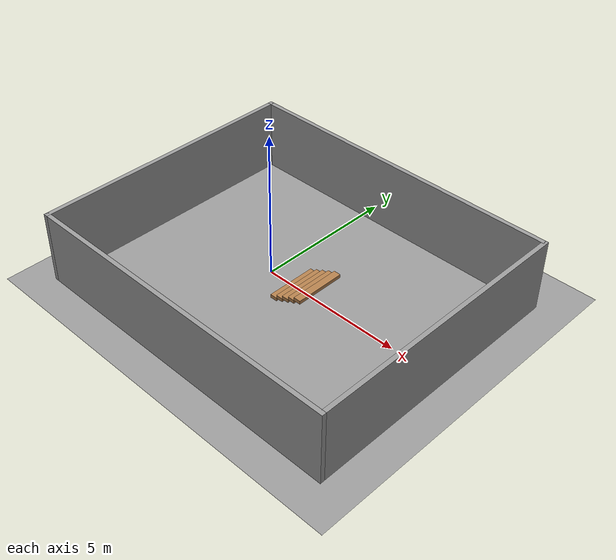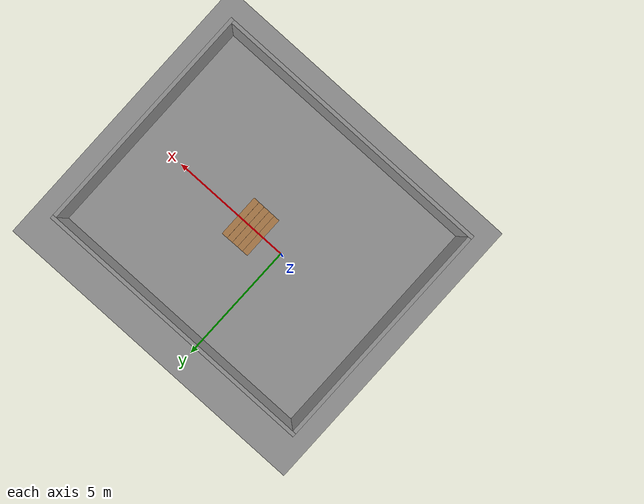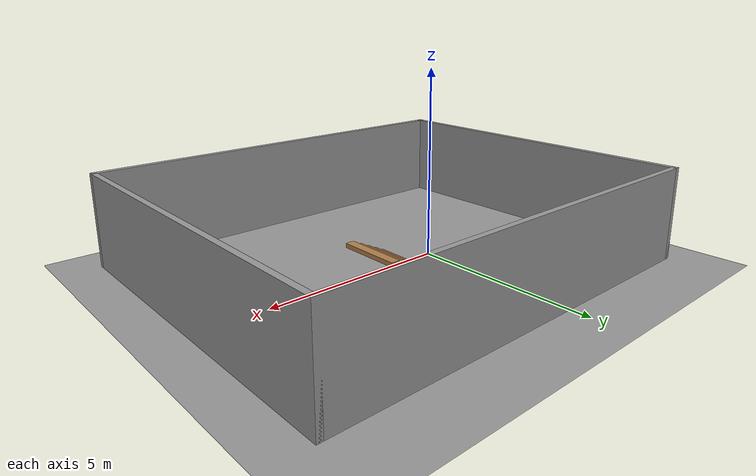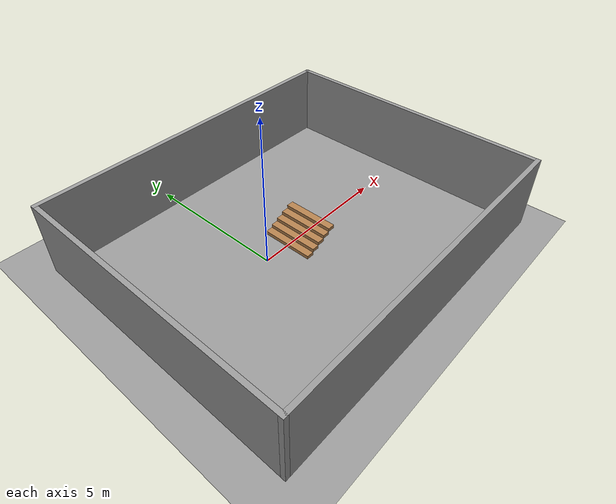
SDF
<?xml version="1.0" ?>
<sdf version="1.5">
    <world name="default">

        <physics type="ode">
        <max_step_size>0.001</max_step_size>
        <real_time_factor>1</real_time_factor>
        <real_time_update_rate>1000</real_time_update_rate>
        <gravity>0 0 -9.81</gravity>
            <ode>
                <solver>
                <type>quick</type>
                <iters>50</iters>
                <sor>1.3</sor>
                </solver>
                <constraints>
                <cfm>0.0</cfm>
                <erp>0.2</erp>
                <contact_max_correcting_vel>10.0</contact_max_correcting_vel>
                <contact_surface_layer>0.001</contact_surface_layer>
                </constraints>
            </ode>
        </physics>

        <scene>
        <shadows>false</shadows>
        </scene>
        <!-- A global light source -->
        <include>
            <uri>model://sun</uri>
        </include>
        <include>
            <uri>model://stairs</uri>
        </include>
        <!-- environment blocks, obstacles or stairs -->

    </world>
</sdf>

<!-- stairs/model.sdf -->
<sdf version='1.7'>
  <model name='stairs'>
    <pose>1.17958 -0.275631 0 0 -0 0</pose>
    <link name='Stairs_2'>
      <visual name='Stairs_2_Visual_0'>
        <pose>-0.179578 0.275631 0.06 0 -0 1.5708</pose>
        <geometry>
          <box>
            <size>1.77 0.25 0.12</size>
          </box>
        </geometry>
        <material>
          <script>
            <uri>file://media/materials/scripts/gazebo.material</uri>
            <name>Gazebo/Wood</name>
          </script>
          <ambient>0.921569 0.807843 0.615686 1</ambient>
        </material>
        <meta>
          <layer>0</layer>
        </meta>
      </visual>
      <collision name='Stairs_2_Collision_0'>
      <laser_retro>120</laser_retro>
        <geometry>
          <box>
            <size>1.77 0.25 0.12</size>
          </box>
        </geometry>
        <pose>-0.179578 0.275631 0.06 0 -0 1.5708</pose>
      </collision>
      <visual name='Stairs_2_Visual_1'>
        <pose>0.070422 0.275631 0.18 0 -0 1.5708</pose>
        <geometry>
          <box>
            <size>1.77 0.25 0.12</size>
          </box>
        </geometry>
        <material>
          <script>
            <uri>file://media/materials/scripts/gazebo.material</uri>
            <name>Gazebo/Wood</name>
          </script>
          <ambient>0.921569 0.807843 0.615686 1</ambient>
        </material>
        <meta>
          <layer>0</layer>
        </meta>
      </visual>
      <collision name='Stairs_2_Collision_1'>
      <laser_retro>120</laser_retro>
        <geometry>
          <box>
            <size>1.77 0.25 0.12</size>
          </box>
        </geometry>
        <pose>0.070422 0.275631 0.18 0 -0 1.5708</pose>
      </collision>
      <visual name='Stairs_2_Visual_2'>
        <pose>0.320422 0.275631 0.3 0 -0 1.5708</pose>
        <geometry>
          <box>
            <size>1.77 0.25 0.12</size>
          </box>
        </geometry>
        <material>
          <script>
            <uri>file://media/materials/scripts/gazebo.material</uri>
            <name>Gazebo/Wood</name>
          </script>
          <ambient>0.921569 0.807843 0.615686 1</ambient>
        </material>
        <meta>
          <layer>0</layer>
        </meta>
      </visual>
      <collision name='Stairs_2_Collision_2'>
      <laser_retro>120</laser_retro>
        <geometry>
          <box>
            <size>1.77 0.25 0.12</size>
          </box>
        </geometry>
        <pose>0.320422 0.275631 0.3 0 -0 1.5708</pose>
      </collision>
      <visual name='Stairs_2_Visual_3'>
        <pose>0.570422 0.275631 0.42 0 -0 1.5708</pose>
        <geometry>
          <box>
            <size>1.77 0.25 0.12</size>
          </box>
        </geometry>
        <material>
          <script>
            <uri>file://media/materials/scripts/gazebo.material</uri>
            <name>Gazebo/Wood</name>
          </script>
          <ambient>0.921569 0.807843 0.615686 1</ambient>
        </material>
        <meta>
          <layer>0</layer>
        </meta>
      </visual>
      <collision name='Stairs_2_Collision_3'>
      <laser_retro>120</laser_retro>
        <geometry>
          <box>
            <size>1.77 0.25 0.12</size>
          </box>
        </geometry>
        <pose>0.570422 0.275631 0.42 0 -0 1.5708</pose>
      </collision>
      <visual name='Stairs_2_Visual_4'>
        <pose>0.820422 0.275631 0.54 0 -0 1.5708</pose>
        <geometry>
          <box>
            <size>1.77 0.25 0.12</size>
          </box>
        </geometry>
        <material>
          <script>
            <uri>file://media/materials/scripts/gazebo.material</uri>
            <name>Gazebo/Wood</name>
          </script>
          <ambient>0.921569 0.807843 0.615686 1</ambient>
        </material>
        <meta>
          <layer>0</layer>
        </meta>
      </visual>
      <collision name='Stairs_2_Collision_4'>
      <laser_retro>120</laser_retro>
        <geometry>
          <box>
            <size>1.77 0.25 0.12</size>
          </box>
        </geometry>
        <pose>0.820422 0.275631 0.54 0 -0 1.5708</pose>
      </collision>
    </link>
    <link name='Wall_0'>
      <collision name='Wall_0_Collision'>
      <laser_retro>160</laser_retro>
        <geometry>
          <box>
            <size>11.5 0.15 2.5</size>
          </box>
        </geometry>
        <pose>0 0 1.25 0 -0 0</pose>
      </collision>
      <visual name='Wall_0_Visual'>
        <pose>0 0 1.25 0 -0 0</pose>
        <geometry>
          <box>
            <size>11.5 0.15 2.5</size>
          </box>
        </geometry>
        <material>
          <script>
            <uri>file://media/materials/scripts/gazebo.material</uri>
            <name>Gazebo/Grey</name>
          </script>
          <ambient>1 1 1 1</ambient>
        </material>
        <meta>
          <layer>0</layer>
        </meta>
      </visual>
      <pose>-0 4.675 0 0 -0 0</pose>
    </link>
    <link name='Wall_1'>
      <collision name='Wall_1_Collision'>
      <laser_retro>160</laser_retro>
        <geometry>
          <box>
            <size>9.5 0.15 2.5</size>
          </box>
        </geometry>
        <pose>0 0 1.25 0 -0 0</pose>
      </collision>
      <visual name='Wall_1_Visual'>
        <pose>0 0 1.25 0 -0 0</pose>
        <geometry>
          <box>
            <size>9.5 0.15 2.5</size>
          </box>
        </geometry>
        <material>
          <script>
            <uri>file://media/materials/scripts/gazebo.material</uri>
            <name>Gazebo/Grey</name>
          </script>
          <ambient>1 1 1 1</ambient>
        </material>
        <meta>
          <layer>0</layer>
        </meta>
      </visual>
      <pose>5.675 -0 0 0 -0 -1.5708</pose>
    </link>
    <link name='Wall_2'>
      <collision name='Wall_2_Collision'>
      <laser_retro>160</laser_retro>
        <geometry>
          <box>
            <size>11.5 0.15 2.5</size>
          </box>
        </geometry>
        <pose>0 0 1.25 0 -0 0</pose>
      </collision>
      <visual name='Wall_2_Visual'>
        <pose>0 0 1.25 0 -0 0</pose>
        <geometry>
          <box>
            <size>11.5 0.15 2.5</size>
          </box>
        </geometry>
        <material>
          <script>
            <uri>file://media/materials/scripts/gazebo.material</uri>
            <name>Gazebo/Grey</name>
          </script>
          <ambient>1 1 1 1</ambient>
        </material>
        <meta>
          <layer>0</layer>
        </meta>
      </visual>
      <pose>-0 -4.675 0 0 -0 3.14159</pose>
    </link>
    <link name='Wall_3'>
      <collision name='Wall_3_Collision'>
      <laser_retro>160</laser_retro>
        <geometry>
          <box>
            <size>9.5 0.15 2.5</size>
          </box>
        </geometry>
        <pose>0 0 1.25 0 -0 0</pose>
      </collision>
      <visual name='Wall_3_Visual'>
        <pose>0 0 1.25 0 -0 0</pose>
        <geometry>
          <box>
            <size>9.5 0.15 2.5</size>
          </box>
        </geometry>
        <material>
          <script>
            <uri>file://media/materials/scripts/gazebo.material</uri>
            <name>Gazebo/Grey</name>
          </script>
          <ambient>1 1 1 1</ambient>
        </material>
        <meta>
          <layer>0</layer>
        </meta>
      </visual>
      <pose>-5.675 -0 0 0 -0 1.5708</pose>
    </link>
    <static>1</static>
    <link name="link">
      <collision name="collision">
        <laser_retro>140</laser_retro>
        <geometry>
          <plane>
            <normal>0 0 1</normal>
            <size>100 100</size>
          </plane>
        </geometry>
        <surface>
          <friction>
            <ode>
              <mu>100</mu>
              <mu2>50</mu2>
            </ode>
          </friction>
        </surface>
      </collision>
      <visual name="visual">
        <cast_shadows>false</cast_shadows>
        <geometry>
          <plane>
            <normal>0 0 1</normal>
            <size>100 100</size>
          </plane>
        </geometry>
        <material>
          <script>
            <uri>file://media/materials/scripts/gazebo.material</uri>
            <name>Gazebo/Grey</name>
          </script>
        </material>
      </visual>
    </link>
  </model>
</sdf>
